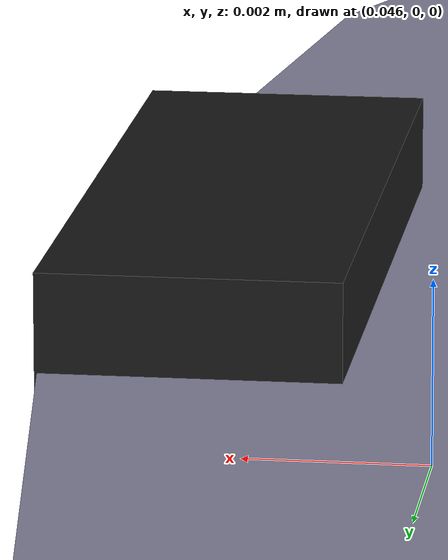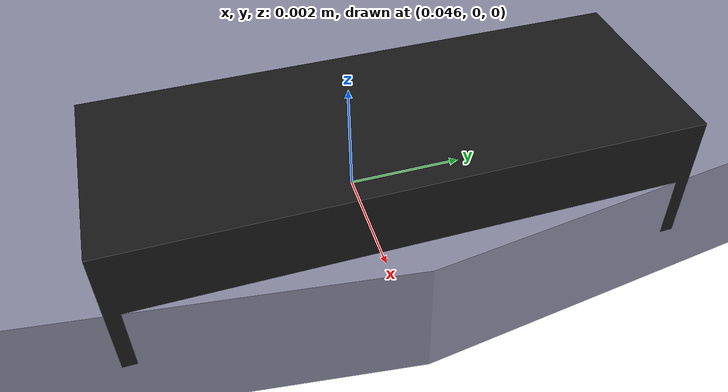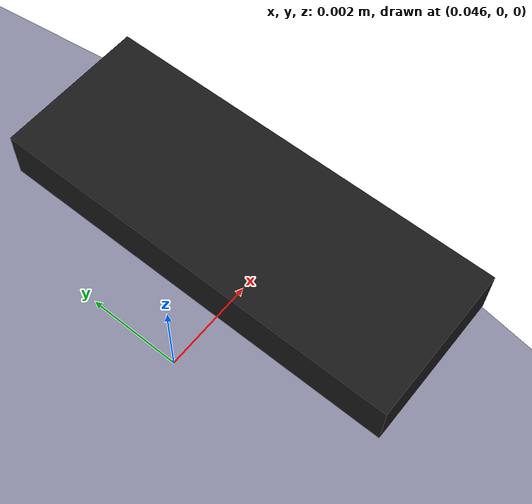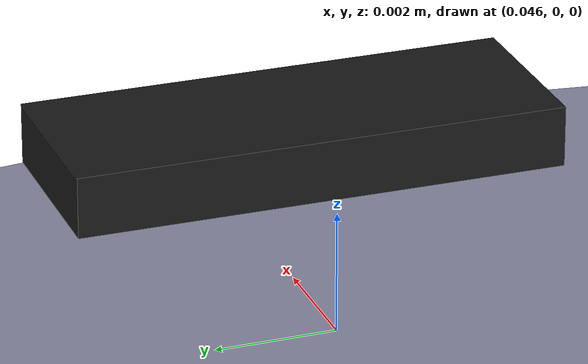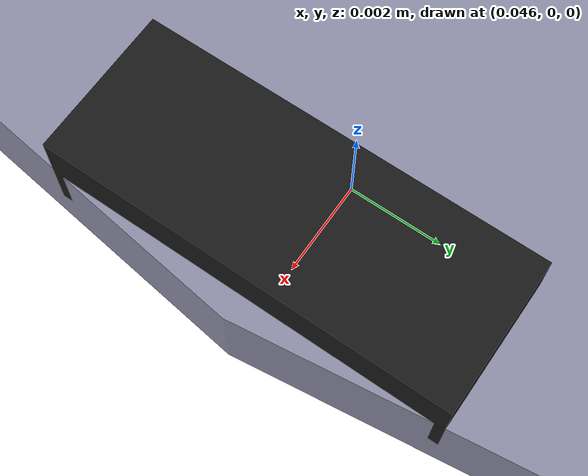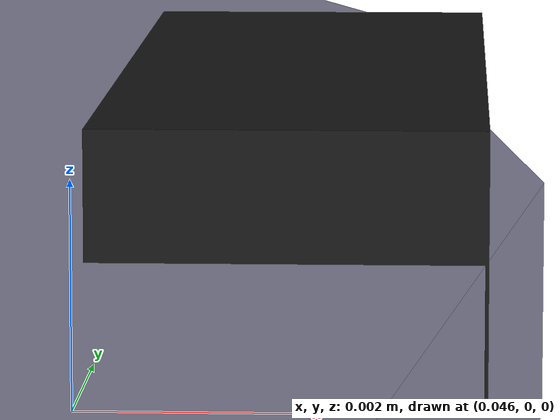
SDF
<?xml version="1.0"?>
<sdf version="1.6">
  <model name="wafer_disc">
    <link name="wafer_link">
      <pose>0 0 0.001 0 0 0</pose>

      <inertial>
        <mass>0.015</mass>
        <!-- Thin solid cylinder: I_xx = I_yy = m(3r² + h²)/12, I_zz = mr²/2 -->
        <inertia>
          <ixx>0.0000094</ixx>
          <ixy>0</ixy>
          <ixz>0</ixz>
          <iyy>0.0000094</iyy>
          <iyz>0</iyz>
          <izz>0.0000188</izz>
        </inertia>
      </inertial>

      <collision name="wafer_collision">
        <geometry>
          <cylinder>
            <radius>0.050</radius>
            <length>0.002</length>
          </cylinder>
        </geometry>
        <surface>
          <friction>
            <ode>
              <mu>0.8</mu>
              <mu2>0.6</mu2>
            </ode>
          </friction>
          <contact>
            <ode>
              <kp>1e6</kp>
              <kd>1.0</kd>
            </ode>
          </contact>
        </surface>
      </collision>

      <visual name="wafer_visual">
        <geometry>
          <cylinder>
            <radius>0.050</radius>
            <length>0.002</length>
          </cylinder>
        </geometry>
        <material>
          <ambient>0.55 0.55 0.60 0.95</ambient>
          <diffuse>0.55 0.55 0.65 0.95</diffuse>
          <specular>0.8 0.8 0.9 0.8</specular>
          <emissive>0 0 0 0</emissive>
        </material>
      </visual>

      <!-- Notch marker (small box) for rotation reference — like real wafer flat/notch -->
      <visual name="notch_visual">
        <pose>0.048 0 0.001 0 0 0</pose>
        <geometry>
          <box><size>0.003 0.008 0.002</size></box>
        </geometry>
        <material>
          <ambient>0.1 0.1 0.1 1</ambient>
          <diffuse>0.1 0.1 0.1 1</diffuse>
        </material>
      </visual>

    </link>
  </model>
</sdf>
